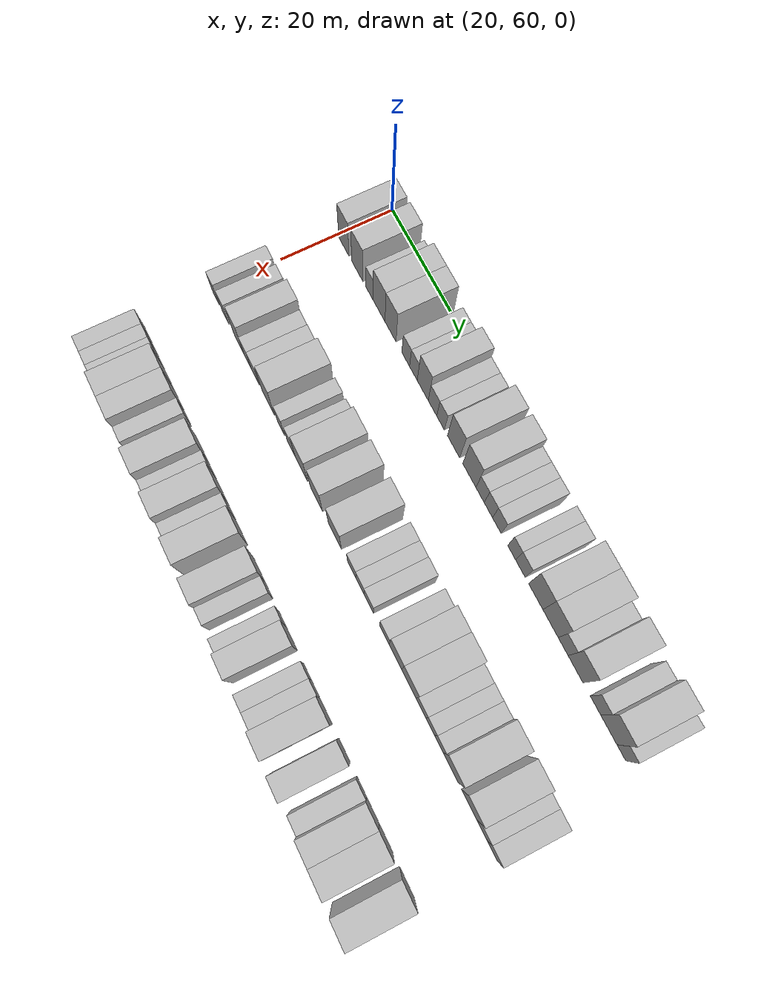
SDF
<sdf version="1.6">
 <world name="default">
  <model name="building_72">
   <static>1</static>
   <pose>25.0000 62.3919 0 0.000000 0.000000 0.000000</pose>
   <link name="link">
    <pose>0 0 4.50 0 0 0</pose>
    <collision name="collision"><geometry><box><size>10.0000 3.7185 9.0000</size></box></geometry></collision>
    <visual name="visual">
     <cast_shadows>0</cast_shadows>
     <geometry><box><size>10.0000 3.7185 9.0000</size></box></geometry>
     <material>
      <script>
       <uri>model://HANNAS_wall/materials/scripts</uri>
       <uri>model://HANNAS_wall/materials/textures</uri>
       <name>vrc/HANNAS_wall</name>
      </script>
     </material>
    </visual>
   </link>
  </model>
  <model name="building_73">
   <static>1</static>
   <pose>25.0000 67.2592 0 0.000000 0.000000 0.000000</pose>
   <link name="link">
    <pose>0 0 4.50 0 0 0</pose>
    <collision name="collision"><geometry><box><size>10.0000 4.0162 9.0000</size></box></geometry></collision>
    <visual name="visual">
     <cast_shadows>0</cast_shadows>
     <geometry><box><size>10.0000 4.0162 9.0000</size></box></geometry>
     <material>
      <script>
       <uri>model://HANNAS_wall/materials/scripts</uri>
       <uri>model://HANNAS_wall/materials/textures</uri>
       <name>vrc/HANNAS_wall</name>
      </script>
     </material>
    </visual>
   </link>
  </model>
  <model name="building_74">
   <static>1</static>
   <pose>25.0000 71.5774 0 0.000000 0.000000 0.000000</pose>
   <link name="link">
    <pose>0 0 3.00 0 0 0</pose>
    <collision name="collision"><geometry><box><size>10.0000 2.6202 6.0000</size></box></geometry></collision>
    <visual name="visual">
     <cast_shadows>0</cast_shadows>
     <geometry><box><size>10.0000 2.6202 6.0000</size></box></geometry>
     <material>
      <script>
       <uri>model://HANNAS_wall/materials/scripts</uri>
       <uri>model://HANNAS_wall/materials/textures</uri>
       <name>vrc/HANNAS_wall</name>
      </script>
     </material>
    </visual>
   </link>
  </model>
  <model name="building_75">
   <static>1</static>
   <pose>25.0000 74.9380 0 0.000000 0.000000 0.000000</pose>
   <link name="link">
    <pose>0 0 4.50 0 0 0</pose>
    <collision name="collision"><geometry><box><size>10.0000 4.1010 9.0000</size></box></geometry></collision>
    <visual name="visual">
     <cast_shadows>0</cast_shadows>
     <geometry><box><size>10.0000 4.1010 9.0000</size></box></geometry>
     <material>
      <script>
       <uri>model://HANNAS_wall/materials/scripts</uri>
       <uri>model://HANNAS_wall/materials/textures</uri>
       <name>vrc/HANNAS_wall</name>
      </script>
     </material>
    </visual>
   </link>
  </model>
  <model name="building_76">
   <static>1</static>
   <pose>25.0000 78.8971 0 0.000000 0.000000 0.000000</pose>
   <link name="link">
    <pose>0 0 4.50 0 0 0</pose>
    <collision name="collision"><geometry><box><size>10.0000 3.8172 9.0000</size></box></geometry></collision>
    <visual name="visual">
     <cast_shadows>0</cast_shadows>
     <geometry><box><size>10.0000 3.8172 9.0000</size></box></geometry>
     <material>
      <script>
       <uri>model://HANNAS_wall/materials/scripts</uri>
       <uri>model://HANNAS_wall/materials/textures</uri>
       <name>vrc/HANNAS_wall</name>
      </script>
     </material>
    </visual>
   </link>
  </model>
  <model name="building_77">
   <static>1</static>
   <pose>25.0000 84.1204 0 0.000000 0.000000 0.000000</pose>
   <link name="link">
    <pose>0 0 3.00 0 0 0</pose>
    <collision name="collision"><geometry><box><size>10.0000 2.6295 6.0000</size></box></geometry></collision>
    <visual name="visual">
     <cast_shadows>0</cast_shadows>
     <geometry><box><size>10.0000 2.6295 6.0000</size></box></geometry>
     <material>
      <script>
       <uri>model://HANNAS_wall/materials/scripts</uri>
       <uri>model://HANNAS_wall/materials/textures</uri>
       <name>vrc/HANNAS_wall</name>
      </script>
     </material>
    </visual>
   </link>
  </model>
  <model name="building_78">
   <static>1</static>
   <pose>25.0000 86.7137 0 0.000000 0.000000 0.000000</pose>
   <link name="link">
    <pose>0 0 3.00 0 0 0</pose>
    <collision name="collision"><geometry><box><size>10.0000 2.5571 6.0000</size></box></geometry></collision>
    <visual name="visual">
     <cast_shadows>0</cast_shadows>
     <geometry><box><size>10.0000 2.5571 6.0000</size></box></geometry>
     <material>
      <script>
       <uri>model://HANNAS_wall/materials/scripts</uri>
       <uri>model://HANNAS_wall/materials/textures</uri>
       <name>vrc/HANNAS_wall</name>
      </script>
     </material>
    </visual>
   </link>
  </model>
  <model name="building_79">
   <static>1</static>
   <pose>25.0000 89.8421 0 0.000000 0.000000 0.000000</pose>
   <link name="link">
    <pose>0 0 4.50 0 0 0</pose>
    <collision name="collision"><geometry><box><size>10.0000 3.6998 9.0000</size></box></geometry></collision>
    <visual name="visual">
     <cast_shadows>0</cast_shadows>
     <geometry><box><size>10.0000 3.6998 9.0000</size></box></geometry>
     <material>
      <script>
       <uri>model://HANNAS_wall/materials/scripts</uri>
       <uri>model://HANNAS_wall/materials/textures</uri>
       <name>vrc/HANNAS_wall</name>
      </script>
     </material>
    </visual>
   </link>
  </model>
  <model name="building_80">
   <static>1</static>
   <pose>25.0000 93.0913 0 0.000000 0.000000 0.000000</pose>
   <link name="link">
    <pose>0 0 3.00 0 0 0</pose>
    <collision name="collision"><geometry><box><size>10.0000 2.7985 6.0000</size></box></geometry></collision>
    <visual name="visual">
     <cast_shadows>0</cast_shadows>
     <geometry><box><size>10.0000 2.7985 6.0000</size></box></geometry>
     <material>
      <script>
       <uri>model://HANNAS_wall/materials/scripts</uri>
       <uri>model://HANNAS_wall/materials/textures</uri>
       <name>vrc/HANNAS_wall</name>
      </script>
     </material>
    </visual>
   </link>
  </model>
  <model name="building_81">
   <static>1</static>
   <pose>25.0000 95.7357 0 0.000000 0.000000 0.000000</pose>
   <link name="link">
    <pose>0 0 3.00 0 0 0</pose>
    <collision name="collision"><geometry><box><size>10.0000 2.4904 6.0000</size></box></geometry></collision>
    <visual name="visual">
     <cast_shadows>0</cast_shadows>
     <geometry><box><size>10.0000 2.4904 6.0000</size></box></geometry>
     <material>
      <script>
       <uri>model://HANNAS_wall/materials/scripts</uri>
       <uri>model://HANNAS_wall/materials/textures</uri>
       <name>vrc/HANNAS_wall</name>
      </script>
     </material>
    </visual>
   </link>
  </model>
  <model name="building_82">
   <static>1</static>
   <pose>25.0000 99.9466 0 0.000000 0.000000 0.000000</pose>
   <link name="link">
    <pose>0 0 4.50 0 0 0</pose>
    <collision name="collision"><geometry><box><size>10.0000 3.9313 9.0000</size></box></geometry></collision>
    <visual name="visual">
     <cast_shadows>0</cast_shadows>
     <geometry><box><size>10.0000 3.9313 9.0000</size></box></geometry>
     <material>
      <script>
       <uri>model://HANNAS_wall/materials/scripts</uri>
       <uri>model://HANNAS_wall/materials/textures</uri>
       <name>vrc/HANNAS_wall</name>
      </script>
     </material>
    </visual>
   </link>
  </model>
  <model name="building_83">
   <static>1</static>
   <pose>25.0000 104.9887 0 0.000000 0.000000 0.000000</pose>
   <link name="link">
    <pose>0 0 4.50 0 0 0</pose>
    <collision name="collision"><geometry><box><size>10.0000 4.1530 9.0000</size></box></geometry></collision>
    <visual name="visual">
     <cast_shadows>0</cast_shadows>
     <geometry><box><size>10.0000 4.1530 9.0000</size></box></geometry>
     <material>
      <script>
       <uri>model://HANNAS_wall/materials/scripts</uri>
       <uri>model://HANNAS_wall/materials/textures</uri>
       <name>vrc/HANNAS_wall</name>
      </script>
     </material>
    </visual>
   </link>
  </model>
  <model name="building_84">
   <static>1</static>
   <pose>25.0000 108.3641 0 0.000000 0.000000 0.000000</pose>
   <link name="link">
    <pose>0 0 3.00 0 0 0</pose>
    <collision name="collision"><geometry><box><size>10.0000 2.5978 6.0000</size></box></geometry></collision>
    <visual name="visual">
     <cast_shadows>0</cast_shadows>
     <geometry><box><size>10.0000 2.5978 6.0000</size></box></geometry>
     <material>
      <script>
       <uri>model://HANNAS_wall/materials/scripts</uri>
       <uri>model://HANNAS_wall/materials/textures</uri>
       <name>vrc/HANNAS_wall</name>
      </script>
     </material>
    </visual>
   </link>
  </model>
  <model name="building_85">
   <static>1</static>
   <pose>25.0000 110.9537 0 0.000000 0.000000 0.000000</pose>
   <link name="link">
    <pose>0 0 3.00 0 0 0</pose>
    <collision name="collision"><geometry><box><size>10.0000 2.5814 6.0000</size></box></geometry></collision>
    <visual name="visual">
     <cast_shadows>0</cast_shadows>
     <geometry><box><size>10.0000 2.5814 6.0000</size></box></geometry>
     <material>
      <script>
       <uri>model://HANNAS_wall/materials/scripts</uri>
       <uri>model://HANNAS_wall/materials/textures</uri>
       <name>vrc/HANNAS_wall</name>
      </script>
     </material>
    </visual>
   </link>
  </model>
  <model name="building_86">
   <static>1</static>
   <pose>25.0000 113.5695 0 0.000000 0.000000 0.000000</pose>
   <link name="link">
    <pose>0 0 3.00 0 0 0</pose>
    <collision name="collision"><geometry><box><size>10.0000 2.6502 6.0000</size></box></geometry></collision>
    <visual name="visual">
     <cast_shadows>0</cast_shadows>
     <geometry><box><size>10.0000 2.6502 6.0000</size></box></geometry>
     <material>
      <script>
       <uri>model://HANNAS_wall/materials/scripts</uri>
       <uri>model://HANNAS_wall/materials/textures</uri>
       <name>vrc/HANNAS_wall</name>
      </script>
     </material>
    </visual>
   </link>
  </model>
  <model name="building_87">
   <static>1</static>
   <pose>25.0000 118.1043 0 0.000000 0.000000 0.000000</pose>
   <link name="link">
    <pose>0 0 3.00 0 0 0</pose>
    <collision name="collision"><geometry><box><size>10.0000 2.4193 6.0000</size></box></geometry></collision>
    <visual name="visual">
     <cast_shadows>0</cast_shadows>
     <geometry><box><size>10.0000 2.4193 6.0000</size></box></geometry>
     <material>
      <script>
       <uri>model://HANNAS_wall/materials/scripts</uri>
       <uri>model://HANNAS_wall/materials/textures</uri>
       <name>vrc/HANNAS_wall</name>
      </script>
     </material>
    </visual>
   </link>
  </model>
  <model name="building_88">
   <static>1</static>
   <pose>25.0000 120.7373 0 0.000000 0.000000 0.000000</pose>
   <link name="link">
    <pose>0 0 3.00 0 0 0</pose>
    <collision name="collision"><geometry><box><size>10.0000 2.8467 6.0000</size></box></geometry></collision>
    <visual name="visual">
     <cast_shadows>0</cast_shadows>
     <geometry><box><size>10.0000 2.8467 6.0000</size></box></geometry>
     <material>
      <script>
       <uri>model://HANNAS_wall/materials/scripts</uri>
       <uri>model://HANNAS_wall/materials/textures</uri>
       <name>vrc/HANNAS_wall</name>
      </script>
     </material>
    </visual>
   </link>
  </model>
  <model name="building_89">
   <static>1</static>
   <pose>25.0000 125.2650 0 0.000000 0.000000 0.000000</pose>
   <link name="link">
    <pose>0 0 4.50 0 0 0</pose>
    <collision name="collision"><geometry><box><size>10.0000 4.2087 9.0000</size></box></geometry></collision>
    <visual name="visual">
     <cast_shadows>0</cast_shadows>
     <geometry><box><size>10.0000 4.2087 9.0000</size></box></geometry>
     <material>
      <script>
       <uri>model://HANNAS_wall/materials/scripts</uri>
       <uri>model://HANNAS_wall/materials/textures</uri>
       <name>vrc/HANNAS_wall</name>
      </script>
     </material>
    </visual>
   </link>
  </model>
  <model name="building_90">
   <static>1</static>
   <pose>25.0000 129.5925 0 0.000000 0.000000 0.000000</pose>
   <link name="link">
    <pose>0 0 4.50 0 0 0</pose>
    <collision name="collision"><geometry><box><size>10.0000 4.4463 9.0000</size></box></geometry></collision>
    <visual name="visual">
     <cast_shadows>0</cast_shadows>
     <geometry><box><size>10.0000 4.4463 9.0000</size></box></geometry>
     <material>
      <script>
       <uri>model://HANNAS_wall/materials/scripts</uri>
       <uri>model://HANNAS_wall/materials/textures</uri>
       <name>vrc/HANNAS_wall</name>
      </script>
     </material>
    </visual>
   </link>
  </model>
  <model name="building_91">
   <static>1</static>
   <pose>25.0000 133.2282 0 0.000000 0.000000 0.000000</pose>
   <link name="link">
    <pose>0 0 3.00 0 0 0</pose>
    <collision name="collision"><geometry><box><size>10.0000 2.8251 6.0000</size></box></geometry></collision>
    <visual name="visual">
     <cast_shadows>0</cast_shadows>
     <geometry><box><size>10.0000 2.8251 6.0000</size></box></geometry>
     <material>
      <script>
       <uri>model://HANNAS_wall/materials/scripts</uri>
       <uri>model://HANNAS_wall/materials/textures</uri>
       <name>vrc/HANNAS_wall</name>
      </script>
     </material>
    </visual>
   </link>
  </model>
  <model name="building_92">
   <static>1</static>
   <pose>25.0000 136.7591 0 0.000000 0.000000 0.000000</pose>
   <link name="link">
    <pose>0 0 4.50 0 0 0</pose>
    <collision name="collision"><geometry><box><size>10.0000 4.2366 9.0000</size></box></geometry></collision>
    <visual name="visual">
     <cast_shadows>0</cast_shadows>
     <geometry><box><size>10.0000 4.2366 9.0000</size></box></geometry>
     <material>
      <script>
       <uri>model://HANNAS_wall/materials/scripts</uri>
       <uri>model://HANNAS_wall/materials/textures</uri>
       <name>vrc/HANNAS_wall</name>
      </script>
     </material>
    </visual>
   </link>
  </model>
  <model name="building_93">
   <static>1</static>
   <pose>25.0000 142.3125 0 0.000000 0.000000 0.000000</pose>
   <link name="link">
    <pose>0 0 3.00 0 0 0</pose>
    <collision name="collision"><geometry><box><size>10.0000 2.8704 6.0000</size></box></geometry></collision>
    <visual name="visual">
     <cast_shadows>0</cast_shadows>
     <geometry><box><size>10.0000 2.8704 6.0000</size></box></geometry>
     <material>
      <script>
       <uri>model://HANNAS_wall/materials/scripts</uri>
       <uri>model://HANNAS_wall/materials/textures</uri>
       <name>vrc/HANNAS_wall</name>
      </script>
     </material>
    </visual>
   </link>
  </model>
  <model name="building_94">
   <static>1</static>
   <pose>25.0000 145.9906 0 0.000000 0.000000 0.000000</pose>
   <link name="link">
    <pose>0 0 4.50 0 0 0</pose>
    <collision name="collision"><geometry><box><size>10.0000 4.4858 9.0000</size></box></geometry></collision>
    <visual name="visual">
     <cast_shadows>0</cast_shadows>
     <geometry><box><size>10.0000 4.4858 9.0000</size></box></geometry>
     <material>
      <script>
       <uri>model://HANNAS_wall/materials/scripts</uri>
       <uri>model://HANNAS_wall/materials/textures</uri>
       <name>vrc/HANNAS_wall</name>
      </script>
     </material>
    </visual>
   </link>
  </model>
  <model name="building_95">
   <static>1</static>
   <pose>25.0000 149.4372 0 0.000000 0.000000 0.000000</pose>
   <link name="link">
    <pose>0 0 3.00 0 0 0</pose>
    <collision name="collision"><geometry><box><size>10.0000 2.4074 6.0000</size></box></geometry></collision>
    <visual name="visual">
     <cast_shadows>0</cast_shadows>
     <geometry><box><size>10.0000 2.4074 6.0000</size></box></geometry>
     <material>
      <script>
       <uri>model://HANNAS_wall/materials/scripts</uri>
       <uri>model://HANNAS_wall/materials/textures</uri>
       <name>vrc/HANNAS_wall</name>
      </script>
     </material>
    </visual>
   </link>
  </model>
  <model name="building_187">
   <static>1</static>
   <pose>47.0000 61.5272 0 0.000000 0.000000 0.000000</pose>
   <link name="link">
    <pose>0 0 3.00 0 0 0</pose>
    <collision name="collision"><geometry><box><size>10.0000 2.5414 6.0000</size></box></geometry></collision>
    <visual name="visual">
     <cast_shadows>0</cast_shadows>
     <geometry><box><size>10.0000 2.5414 6.0000</size></box></geometry>
     <material>
      <script>
       <uri>model://HANNAS_wall/materials/scripts</uri>
       <uri>model://HANNAS_wall/materials/textures</uri>
       <name>vrc/HANNAS_wall</name>
      </script>
     </material>
    </visual>
   </link>
  </model>
  <model name="building_188">
   <static>1</static>
   <pose>47.0000 65.1511 0 0.000000 0.000000 0.000000</pose>
   <link name="link">
    <pose>0 0 3.00 0 0 0</pose>
    <collision name="collision"><geometry><box><size>10.0000 2.7064 6.0000</size></box></geometry></collision>
    <visual name="visual">
     <cast_shadows>0</cast_shadows>
     <geometry><box><size>10.0000 2.7064 6.0000</size></box></geometry>
     <material>
      <script>
       <uri>model://HANNAS_wall/materials/scripts</uri>
       <uri>model://HANNAS_wall/materials/textures</uri>
       <name>vrc/HANNAS_wall</name>
      </script>
     </material>
    </visual>
   </link>
  </model>
  <model name="building_189">
   <static>1</static>
   <pose>47.0000 70.3669 0 0.000000 0.000000 0.000000</pose>
   <link name="link">
    <pose>0 0 4.50 0 0 0</pose>
    <collision name="collision"><geometry><box><size>10.0000 3.7252 9.0000</size></box></geometry></collision>
    <visual name="visual">
     <cast_shadows>0</cast_shadows>
     <geometry><box><size>10.0000 3.7252 9.0000</size></box></geometry>
     <material>
      <script>
       <uri>model://HANNAS_wall/materials/scripts</uri>
       <uri>model://HANNAS_wall/materials/textures</uri>
       <name>vrc/HANNAS_wall</name>
      </script>
     </material>
    </visual>
   </link>
  </model>
  <model name="building_190">
   <static>1</static>
   <pose>47.0000 73.5752 0 0.000000 0.000000 0.000000</pose>
   <link name="link">
    <pose>0 0 3.00 0 0 0</pose>
    <collision name="collision"><geometry><box><size>10.0000 2.6914 6.0000</size></box></geometry></collision>
    <visual name="visual">
     <cast_shadows>0</cast_shadows>
     <geometry><box><size>10.0000 2.6914 6.0000</size></box></geometry>
     <material>
      <script>
       <uri>model://HANNAS_wall/materials/scripts</uri>
       <uri>model://HANNAS_wall/materials/textures</uri>
       <name>vrc/HANNAS_wall</name>
      </script>
     </material>
    </visual>
   </link>
  </model>
  <model name="building_191">
   <static>1</static>
   <pose>47.0000 76.4164 0 0.000000 0.000000 0.000000</pose>
   <link name="link">
    <pose>0 0 3.00 0 0 0</pose>
    <collision name="collision"><geometry><box><size>10.0000 2.9910 6.0000</size></box></geometry></collision>
    <visual name="visual">
     <cast_shadows>0</cast_shadows>
     <geometry><box><size>10.0000 2.9910 6.0000</size></box></geometry>
     <material>
      <script>
       <uri>model://HANNAS_wall/materials/scripts</uri>
       <uri>model://HANNAS_wall/materials/textures</uri>
       <name>vrc/HANNAS_wall</name>
      </script>
     </material>
    </visual>
   </link>
  </model>
  <model name="building_192">
   <static>1</static>
   <pose>47.0000 81.1335 0 0.000000 0.000000 0.000000</pose>
   <link name="link">
    <pose>0 0 4.50 0 0 0</pose>
    <collision name="collision"><geometry><box><size>10.0000 4.4432 9.0000</size></box></geometry></collision>
    <visual name="visual">
     <cast_shadows>0</cast_shadows>
     <geometry><box><size>10.0000 4.4432 9.0000</size></box></geometry>
     <material>
      <script>
       <uri>model://HANNAS_wall/materials/scripts</uri>
       <uri>model://HANNAS_wall/materials/textures</uri>
       <name>vrc/HANNAS_wall</name>
      </script>
     </material>
    </visual>
   </link>
  </model>
  <model name="building_193">
   <static>1</static>
   <pose>47.0000 85.6548 0 0.000000 0.000000 0.000000</pose>
   <link name="link">
    <pose>0 0 3.00 0 0 0</pose>
    <collision name="collision"><geometry><box><size>10.0000 2.5993 6.0000</size></box></geometry></collision>
    <visual name="visual">
     <cast_shadows>0</cast_shadows>
     <geometry><box><size>10.0000 2.5993 6.0000</size></box></geometry>
     <material>
      <script>
       <uri>model://HANNAS_wall/materials/scripts</uri>
       <uri>model://HANNAS_wall/materials/textures</uri>
       <name>vrc/HANNAS_wall</name>
      </script>
     </material>
    </visual>
   </link>
  </model>
  <model name="building_194">
   <static>1</static>
   <pose>47.0000 89.3128 0 0.000000 0.000000 0.000000</pose>
   <link name="link">
    <pose>0 0 3.00 0 0 0</pose>
    <collision name="collision"><geometry><box><size>10.0000 2.7167 6.0000</size></box></geometry></collision>
    <visual name="visual">
     <cast_shadows>0</cast_shadows>
     <geometry><box><size>10.0000 2.7167 6.0000</size></box></geometry>
     <material>
      <script>
       <uri>model://HANNAS_wall/materials/scripts</uri>
       <uri>model://HANNAS_wall/materials/textures</uri>
       <name>vrc/HANNAS_wall</name>
      </script>
     </material>
    </visual>
   </link>
  </model>
  <model name="building_195">
   <static>1</static>
   <pose>47.0000 92.8818 0 0.000000 0.000000 0.000000</pose>
   <link name="link">
    <pose>0 0 4.50 0 0 0</pose>
    <collision name="collision"><geometry><box><size>10.0000 4.4213 9.0000</size></box></geometry></collision>
    <visual name="visual">
     <cast_shadows>0</cast_shadows>
     <geometry><box><size>10.0000 4.4213 9.0000</size></box></geometry>
     <material>
      <script>
       <uri>model://HANNAS_wall/materials/scripts</uri>
       <uri>model://HANNAS_wall/materials/textures</uri>
       <name>vrc/HANNAS_wall</name>
      </script>
     </material>
    </visual>
   </link>
  </model>
  <model name="building_196">
   <static>1</static>
   <pose>47.0000 98.1426 0 0.000000 0.000000 0.000000</pose>
   <link name="link">
    <pose>0 0 4.50 0 0 0</pose>
    <collision name="collision"><geometry><box><size>10.0000 4.1005 9.0000</size></box></geometry></collision>
    <visual name="visual">
     <cast_shadows>0</cast_shadows>
     <geometry><box><size>10.0000 4.1005 9.0000</size></box></geometry>
     <material>
      <script>
       <uri>model://HANNAS_wall/materials/scripts</uri>
       <uri>model://HANNAS_wall/materials/textures</uri>
       <name>vrc/HANNAS_wall</name>
      </script>
     </material>
    </visual>
   </link>
  </model>
  <model name="building_197">
   <static>1</static>
   <pose>47.0000 104.3759 0 0.000000 0.000000 0.000000</pose>
   <link name="link">
    <pose>0 0 4.50 0 0 0</pose>
    <collision name="collision"><geometry><box><size>10.0000 4.3660 9.0000</size></box></geometry></collision>
    <visual name="visual">
     <cast_shadows>0</cast_shadows>
     <geometry><box><size>10.0000 4.3660 9.0000</size></box></geometry>
     <material>
      <script>
       <uri>model://HANNAS_wall/materials/scripts</uri>
       <uri>model://HANNAS_wall/materials/textures</uri>
       <name>vrc/HANNAS_wall</name>
      </script>
     </material>
    </visual>
   </link>
  </model>
  <model name="building_198">
   <static>1</static>
   <pose>47.0000 109.9896 0 0.000000 0.000000 0.000000</pose>
   <link name="link">
    <pose>0 0 3.00 0 0 0</pose>
    <collision name="collision"><geometry><box><size>10.0000 2.8613 6.0000</size></box></geometry></collision>
    <visual name="visual">
     <cast_shadows>0</cast_shadows>
     <geometry><box><size>10.0000 2.8613 6.0000</size></box></geometry>
     <material>
      <script>
       <uri>model://HANNAS_wall/materials/scripts</uri>
       <uri>model://HANNAS_wall/materials/textures</uri>
       <name>vrc/HANNAS_wall</name>
      </script>
     </material>
    </visual>
   </link>
  </model>
  <model name="building_199">
   <static>1</static>
   <pose>47.0000 112.7294 0 0.000000 0.000000 0.000000</pose>
   <link name="link">
    <pose>0 0 3.00 0 0 0</pose>
    <collision name="collision"><geometry><box><size>10.0000 2.6182 6.0000</size></box></geometry></collision>
    <visual name="visual">
     <cast_shadows>0</cast_shadows>
     <geometry><box><size>10.0000 2.6182 6.0000</size></box></geometry>
     <material>
      <script>
       <uri>model://HANNAS_wall/materials/scripts</uri>
       <uri>model://HANNAS_wall/materials/textures</uri>
       <name>vrc/HANNAS_wall</name>
      </script>
     </material>
    </visual>
   </link>
  </model>
  <model name="building_200">
   <static>1</static>
   <pose>47.0000 115.5071 0 0.000000 0.000000 0.000000</pose>
   <link name="link">
    <pose>0 0 3.00 0 0 0</pose>
    <collision name="collision"><geometry><box><size>10.0000 2.9371 6.0000</size></box></geometry></collision>
    <visual name="visual">
     <cast_shadows>0</cast_shadows>
     <geometry><box><size>10.0000 2.9371 6.0000</size></box></geometry>
     <material>
      <script>
       <uri>model://HANNAS_wall/materials/scripts</uri>
       <uri>model://HANNAS_wall/materials/textures</uri>
       <name>vrc/HANNAS_wall</name>
      </script>
     </material>
    </visual>
   </link>
  </model>
  <model name="building_201">
   <static>1</static>
   <pose>47.0000 120.4746 0 0.000000 0.000000 0.000000</pose>
   <link name="link">
    <pose>0 0 3.00 0 0 0</pose>
    <collision name="collision"><geometry><box><size>10.0000 2.9980 6.0000</size></box></geometry></collision>
    <visual name="visual">
     <cast_shadows>0</cast_shadows>
     <geometry><box><size>10.0000 2.9980 6.0000</size></box></geometry>
     <material>
      <script>
       <uri>model://HANNAS_wall/materials/scripts</uri>
       <uri>model://HANNAS_wall/materials/textures</uri>
       <name>vrc/HANNAS_wall</name>
      </script>
     </material>
    </visual>
   </link>
  </model>
  <model name="building_202">
   <static>1</static>
   <pose>47.0000 123.9324 0 0.000000 0.000000 0.000000</pose>
   <link name="link">
    <pose>0 0 4.50 0 0 0</pose>
    <collision name="collision"><geometry><box><size>10.0000 3.9175 9.0000</size></box></geometry></collision>
    <visual name="visual">
     <cast_shadows>0</cast_shadows>
     <geometry><box><size>10.0000 3.9175 9.0000</size></box></geometry>
     <material>
      <script>
       <uri>model://HANNAS_wall/materials/scripts</uri>
       <uri>model://HANNAS_wall/materials/textures</uri>
       <name>vrc/HANNAS_wall</name>
      </script>
     </material>
    </visual>
   </link>
  </model>
  <model name="building_203">
   <static>1</static>
   <pose>47.0000 128.0761 0 0.000000 0.000000 0.000000</pose>
   <link name="link">
    <pose>0 0 4.50 0 0 0</pose>
    <collision name="collision"><geometry><box><size>10.0000 4.3701 9.0000</size></box></geometry></collision>
    <visual name="visual">
     <cast_shadows>0</cast_shadows>
     <geometry><box><size>10.0000 4.3701 9.0000</size></box></geometry>
     <material>
      <script>
       <uri>model://HANNAS_wall/materials/scripts</uri>
       <uri>model://HANNAS_wall/materials/textures</uri>
       <name>vrc/HANNAS_wall</name>
      </script>
     </material>
    </visual>
   </link>
  </model>
  <model name="building_204">
   <static>1</static>
   <pose>47.0000 131.7200 0 0.000000 0.000000 0.000000</pose>
   <link name="link">
    <pose>0 0 3.00 0 0 0</pose>
    <collision name="collision"><geometry><box><size>10.0000 2.9175 6.0000</size></box></geometry></collision>
    <visual name="visual">
     <cast_shadows>0</cast_shadows>
     <geometry><box><size>10.0000 2.9175 6.0000</size></box></geometry>
     <material>
      <script>
       <uri>model://HANNAS_wall/materials/scripts</uri>
       <uri>model://HANNAS_wall/materials/textures</uri>
       <name>vrc/HANNAS_wall</name>
      </script>
     </material>
    </visual>
   </link>
  </model>
  <model name="building_205">
   <static>1</static>
   <pose>47.0000 134.4806 0 0.000000 0.000000 0.000000</pose>
   <link name="link">
    <pose>0 0 3.00 0 0 0</pose>
    <collision name="collision"><geometry><box><size>10.0000 2.6038 6.0000</size></box></geometry></collision>
    <visual name="visual">
     <cast_shadows>0</cast_shadows>
     <geometry><box><size>10.0000 2.6038 6.0000</size></box></geometry>
     <material>
      <script>
       <uri>model://HANNAS_wall/materials/scripts</uri>
       <uri>model://HANNAS_wall/materials/textures</uri>
       <name>vrc/HANNAS_wall</name>
      </script>
     </material>
    </visual>
   </link>
  </model>
  <model name="building_206">
   <static>1</static>
   <pose>47.0000 137.0818 0 0.000000 0.000000 0.000000</pose>
   <link name="link">
    <pose>0 0 3.00 0 0 0</pose>
    <collision name="collision"><geometry><box><size>10.0000 2.5986 6.0000</size></box></geometry></collision>
    <visual name="visual">
     <cast_shadows>0</cast_shadows>
     <geometry><box><size>10.0000 2.5986 6.0000</size></box></geometry>
     <material>
      <script>
       <uri>model://HANNAS_wall/materials/scripts</uri>
       <uri>model://HANNAS_wall/materials/textures</uri>
       <name>vrc/HANNAS_wall</name>
      </script>
     </material>
    </visual>
   </link>
  </model>
  <model name="building_207">
   <static>1</static>
   <pose>47.0000 140.6048 0 0.000000 0.000000 0.000000</pose>
   <link name="link">
    <pose>0 0 4.50 0 0 0</pose>
    <collision name="collision"><geometry><box><size>10.0000 4.4475 9.0000</size></box></geometry></collision>
    <visual name="visual">
     <cast_shadows>0</cast_shadows>
     <geometry><box><size>10.0000 4.4475 9.0000</size></box></geometry>
     <material>
      <script>
       <uri>model://HANNAS_wall/materials/scripts</uri>
       <uri>model://HANNAS_wall/materials/textures</uri>
       <name>vrc/HANNAS_wall</name>
      </script>
     </material>
    </visual>
   </link>
  </model>
  <model name="building_208">
   <static>1</static>
   <pose>47.0000 146.0145 0 0.000000 0.000000 0.000000</pose>
   <link name="link">
    <pose>0 0 4.50 0 0 0</pose>
    <collision name="collision"><geometry><box><size>10.0000 4.3718 9.0000</size></box></geometry></collision>
    <visual name="visual">
     <cast_shadows>0</cast_shadows>
     <geometry><box><size>10.0000 4.3718 9.0000</size></box></geometry>
     <material>
      <script>
       <uri>model://HANNAS_wall/materials/scripts</uri>
       <uri>model://HANNAS_wall/materials/textures</uri>
       <name>vrc/HANNAS_wall</name>
      </script>
     </material>
    </visual>
   </link>
  </model>
  <model name="building_209">
   <static>1</static>
   <pose>47.0000 149.5693 0 0.000000 0.000000 0.000000</pose>
   <link name="link">
    <pose>0 0 3.00 0 0 0</pose>
    <collision name="collision"><geometry><box><size>10.0000 2.7379 6.0000</size></box></geometry></collision>
    <visual name="visual">
     <cast_shadows>0</cast_shadows>
     <geometry><box><size>10.0000 2.7379 6.0000</size></box></geometry>
     <material>
      <script>
       <uri>model://HANNAS_wall/materials/scripts</uri>
       <uri>model://HANNAS_wall/materials/textures</uri>
       <name>vrc/HANNAS_wall</name>
      </script>
     </material>
    </visual>
   </link>
  </model>
  <model name="building_210">
   <static>1</static>
   <pose>47.0000 152.4342 0 0.000000 0.000000 0.000000</pose>
   <link name="link">
    <pose>0 0 3.00 0 0 0</pose>
    <collision name="collision"><geometry><box><size>10.0000 2.9918 6.0000</size></box></geometry></collision>
    <visual name="visual">
     <cast_shadows>0</cast_shadows>
     <geometry><box><size>10.0000 2.9918 6.0000</size></box></geometry>
     <material>
      <script>
       <uri>model://HANNAS_wall/materials/scripts</uri>
       <uri>model://HANNAS_wall/materials/textures</uri>
       <name>vrc/HANNAS_wall</name>
      </script>
     </material>
    </visual>
   </link>
  </model>
  <model name="building_307">
   <static>1</static>
   <pose>69.0000 62.4204 0 0.000000 0.000000 0.000000</pose>
   <link name="link">
    <pose>0 0 3.00 0 0 0</pose>
    <collision name="collision"><geometry><box><size>10.0000 2.6665 6.0000</size></box></geometry></collision>
    <visual name="visual">
     <cast_shadows>0</cast_shadows>
     <geometry><box><size>10.0000 2.6665 6.0000</size></box></geometry>
     <material>
      <script>
       <uri>model://HANNAS_wall/materials/scripts</uri>
       <uri>model://HANNAS_wall/materials/textures</uri>
       <name>vrc/HANNAS_wall</name>
      </script>
     </material>
    </visual>
   </link>
  </model>
  <model name="building_308">
   <static>1</static>
   <pose>69.0000 64.9587 0 0.000000 0.000000 0.000000</pose>
   <link name="link">
    <pose>0 0 3.00 0 0 0</pose>
    <collision name="collision"><geometry><box><size>10.0000 2.4100 6.0000</size></box></geometry></collision>
    <visual name="visual">
     <cast_shadows>0</cast_shadows>
     <geometry><box><size>10.0000 2.4100 6.0000</size></box></geometry>
     <material>
      <script>
       <uri>model://HANNAS_wall/materials/scripts</uri>
       <uri>model://HANNAS_wall/materials/textures</uri>
       <name>vrc/HANNAS_wall</name>
      </script>
     </material>
    </visual>
   </link>
  </model>
  <model name="building_309">
   <static>1</static>
   <pose>69.0000 67.5104 0 0.000000 0.000000 0.000000</pose>
   <link name="link">
    <pose>0 0 3.00 0 0 0</pose>
    <collision name="collision"><geometry><box><size>10.0000 2.6935 6.0000</size></box></geometry></collision>
    <visual name="visual">
     <cast_shadows>0</cast_shadows>
     <geometry><box><size>10.0000 2.6935 6.0000</size></box></geometry>
     <material>
      <script>
       <uri>model://HANNAS_wall/materials/scripts</uri>
       <uri>model://HANNAS_wall/materials/textures</uri>
       <name>vrc/HANNAS_wall</name>
      </script>
     </material>
    </visual>
   </link>
  </model>
  <model name="building_310">
   <static>1</static>
   <pose>69.0000 70.9173 0 0.000000 0.000000 0.000000</pose>
   <link name="link">
    <pose>0 0 4.50 0 0 0</pose>
    <collision name="collision"><geometry><box><size>10.0000 4.1203 9.0000</size></box></geometry></collision>
    <visual name="visual">
     <cast_shadows>0</cast_shadows>
     <geometry><box><size>10.0000 4.1203 9.0000</size></box></geometry>
     <material>
      <script>
       <uri>model://HANNAS_wall/materials/scripts</uri>
       <uri>model://HANNAS_wall/materials/textures</uri>
       <name>vrc/HANNAS_wall</name>
      </script>
     </material>
    </visual>
   </link>
  </model>
  <model name="building_311">
   <static>1</static>
   <pose>69.0000 74.9173 0 0.000000 0.000000 0.000000</pose>
   <link name="link">
    <pose>0 0 4.50 0 0 0</pose>
    <collision name="collision"><geometry><box><size>10.0000 3.8797 9.0000</size></box></geometry></collision>
    <visual name="visual">
     <cast_shadows>0</cast_shadows>
     <geometry><box><size>10.0000 3.8797 9.0000</size></box></geometry>
     <material>
      <script>
       <uri>model://HANNAS_wall/materials/scripts</uri>
       <uri>model://HANNAS_wall/materials/textures</uri>
       <name>vrc/HANNAS_wall</name>
      </script>
     </material>
    </visual>
   </link>
  </model>
  <model name="building_312">
   <static>1</static>
   <pose>69.0000 78.1776 0 0.000000 0.000000 0.000000</pose>
   <link name="link">
    <pose>0 0 3.00 0 0 0</pose>
    <collision name="collision"><geometry><box><size>10.0000 2.6408 6.0000</size></box></geometry></collision>
    <visual name="visual">
     <cast_shadows>0</cast_shadows>
     <geometry><box><size>10.0000 2.6408 6.0000</size></box></geometry>
     <material>
      <script>
       <uri>model://HANNAS_wall/materials/scripts</uri>
       <uri>model://HANNAS_wall/materials/textures</uri>
       <name>vrc/HANNAS_wall</name>
      </script>
     </material>
    </visual>
   </link>
  </model>
  <model name="building_313">
   <static>1</static>
   <pose>69.0000 83.6355 0 0.000000 0.000000 0.000000</pose>
   <link name="link">
    <pose>0 0 4.50 0 0 0</pose>
    <collision name="collision"><geometry><box><size>10.0000 4.2750 9.0000</size></box></geometry></collision>
    <visual name="visual">
     <cast_shadows>0</cast_shadows>
     <geometry><box><size>10.0000 4.2750 9.0000</size></box></geometry>
     <material>
      <script>
       <uri>model://HANNAS_wall/materials/scripts</uri>
       <uri>model://HANNAS_wall/materials/textures</uri>
       <name>vrc/HANNAS_wall</name>
      </script>
     </material>
    </visual>
   </link>
  </model>
  <model name="building_314">
   <static>1</static>
   <pose>69.0000 87.2004 0 0.000000 0.000000 0.000000</pose>
   <link name="link">
    <pose>0 0 3.00 0 0 0</pose>
    <collision name="collision"><geometry><box><size>10.0000 2.8547 6.0000</size></box></geometry></collision>
    <visual name="visual">
     <cast_shadows>0</cast_shadows>
     <geometry><box><size>10.0000 2.8547 6.0000</size></box></geometry>
     <material>
      <script>
       <uri>model://HANNAS_wall/materials/scripts</uri>
       <uri>model://HANNAS_wall/materials/textures</uri>
       <name>vrc/HANNAS_wall</name>
      </script>
     </material>
    </visual>
   </link>
  </model>
  <model name="building_315">
   <static>1</static>
   <pose>69.0000 90.7052 0 0.000000 0.000000 0.000000</pose>
   <link name="link">
    <pose>0 0 4.50 0 0 0</pose>
    <collision name="collision"><geometry><box><size>10.0000 4.1548 9.0000</size></box></geometry></collision>
    <visual name="visual">
     <cast_shadows>0</cast_shadows>
     <geometry><box><size>10.0000 4.1548 9.0000</size></box></geometry>
     <material>
      <script>
       <uri>model://HANNAS_wall/materials/scripts</uri>
       <uri>model://HANNAS_wall/materials/textures</uri>
       <name>vrc/HANNAS_wall</name>
      </script>
     </material>
    </visual>
   </link>
  </model>
  <model name="building_316">
   <static>1</static>
   <pose>69.0000 94.2581 0 0.000000 0.000000 0.000000</pose>
   <link name="link">
    <pose>0 0 3.00 0 0 0</pose>
    <collision name="collision"><geometry><box><size>10.0000 2.9511 6.0000</size></box></geometry></collision>
    <visual name="visual">
     <cast_shadows>0</cast_shadows>
     <geometry><box><size>10.0000 2.9511 6.0000</size></box></geometry>
     <material>
      <script>
       <uri>model://HANNAS_wall/materials/scripts</uri>
       <uri>model://HANNAS_wall/materials/textures</uri>
       <name>vrc/HANNAS_wall</name>
      </script>
     </material>
    </visual>
   </link>
  </model>
  <model name="building_317">
   <static>1</static>
   <pose>69.0000 97.8479 0 0.000000 0.000000 0.000000</pose>
   <link name="link">
    <pose>0 0 4.50 0 0 0</pose>
    <collision name="collision"><geometry><box><size>10.0000 4.2286 9.0000</size></box></geometry></collision>
    <visual name="visual">
     <cast_shadows>0</cast_shadows>
     <geometry><box><size>10.0000 4.2286 9.0000</size></box></geometry>
     <material>
      <script>
       <uri>model://HANNAS_wall/materials/scripts</uri>
       <uri>model://HANNAS_wall/materials/textures</uri>
       <name>vrc/HANNAS_wall</name>
      </script>
     </material>
    </visual>
   </link>
  </model>
  <model name="building_318">
   <static>1</static>
   <pose>69.0000 103.9771 0 0.000000 0.000000 0.000000</pose>
   <link name="link">
    <pose>0 0 4.50 0 0 0</pose>
    <collision name="collision"><geometry><box><size>10.0000 4.0297 9.0000</size></box></geometry></collision>
    <visual name="visual">
     <cast_shadows>0</cast_shadows>
     <geometry><box><size>10.0000 4.0297 9.0000</size></box></geometry>
     <material>
      <script>
       <uri>model://HANNAS_wall/materials/scripts</uri>
       <uri>model://HANNAS_wall/materials/textures</uri>
       <name>vrc/HANNAS_wall</name>
      </script>
     </material>
    </visual>
   </link>
  </model>
  <model name="building_319">
   <static>1</static>
   <pose>69.0000 107.3391 0 0.000000 0.000000 0.000000</pose>
   <link name="link">
    <pose>0 0 3.00 0 0 0</pose>
    <collision name="collision"><geometry><box><size>10.0000 2.6942 6.0000</size></box></geometry></collision>
    <visual name="visual">
     <cast_shadows>0</cast_shadows>
     <geometry><box><size>10.0000 2.6942 6.0000</size></box></geometry>
     <material>
      <script>
       <uri>model://HANNAS_wall/materials/scripts</uri>
       <uri>model://HANNAS_wall/materials/textures</uri>
       <name>vrc/HANNAS_wall</name>
      </script>
     </material>
    </visual>
   </link>
  </model>
  <model name="building_320">
   <static>1</static>
   <pose>69.0000 111.9189 0 0.000000 0.000000 0.000000</pose>
   <link name="link">
    <pose>0 0 3.00 0 0 0</pose>
    <collision name="collision"><geometry><box><size>10.0000 2.4654 6.0000</size></box></geometry></collision>
    <visual name="visual">
     <cast_shadows>0</cast_shadows>
     <geometry><box><size>10.0000 2.4654 6.0000</size></box></geometry>
     <material>
      <script>
       <uri>model://HANNAS_wall/materials/scripts</uri>
       <uri>model://HANNAS_wall/materials/textures</uri>
       <name>vrc/HANNAS_wall</name>
      </script>
     </material>
    </visual>
   </link>
  </model>
  <model name="building_321">
   <static>1</static>
   <pose>69.0000 115.0576 0 0.000000 0.000000 0.000000</pose>
   <link name="link">
    <pose>0 0 4.50 0 0 0</pose>
    <collision name="collision"><geometry><box><size>10.0000 3.8120 9.0000</size></box></geometry></collision>
    <visual name="visual">
     <cast_shadows>0</cast_shadows>
     <geometry><box><size>10.0000 3.8120 9.0000</size></box></geometry>
     <material>
      <script>
       <uri>model://HANNAS_wall/materials/scripts</uri>
       <uri>model://HANNAS_wall/materials/textures</uri>
       <name>vrc/HANNAS_wall</name>
      </script>
     </material>
    </visual>
   </link>
  </model>
  <model name="building_322">
   <static>1</static>
   <pose>69.0000 120.2436 0 0.000000 0.000000 0.000000</pose>
   <link name="link">
    <pose>0 0 3.00 0 0 0</pose>
    <collision name="collision"><geometry><box><size>10.0000 2.5601 6.0000</size></box></geometry></collision>
    <visual name="visual">
     <cast_shadows>0</cast_shadows>
     <geometry><box><size>10.0000 2.5601 6.0000</size></box></geometry>
     <material>
      <script>
       <uri>model://HANNAS_wall/materials/scripts</uri>
       <uri>model://HANNAS_wall/materials/textures</uri>
       <name>vrc/HANNAS_wall</name>
      </script>
     </material>
    </visual>
   </link>
  </model>
  <model name="building_323">
   <static>1</static>
   <pose>69.0000 122.8506 0 0.000000 0.000000 0.000000</pose>
   <link name="link">
    <pose>0 0 3.00 0 0 0</pose>
    <collision name="collision"><geometry><box><size>10.0000 2.6538 6.0000</size></box></geometry></collision>
    <visual name="visual">
     <cast_shadows>0</cast_shadows>
     <geometry><box><size>10.0000 2.6538 6.0000</size></box></geometry>
     <material>
      <script>
       <uri>model://HANNAS_wall/materials/scripts</uri>
       <uri>model://HANNAS_wall/materials/textures</uri>
       <name>vrc/HANNAS_wall</name>
      </script>
     </material>
    </visual>
   </link>
  </model>
  <model name="building_324">
   <static>1</static>
   <pose>69.0000 126.2362 0 0.000000 0.000000 0.000000</pose>
   <link name="link">
    <pose>0 0 4.50 0 0 0</pose>
    <collision name="collision"><geometry><box><size>10.0000 4.1176 9.0000</size></box></geometry></collision>
    <visual name="visual">
     <cast_shadows>0</cast_shadows>
     <geometry><box><size>10.0000 4.1176 9.0000</size></box></geometry>
     <material>
      <script>
       <uri>model://HANNAS_wall/materials/scripts</uri>
       <uri>model://HANNAS_wall/materials/textures</uri>
       <name>vrc/HANNAS_wall</name>
      </script>
     </material>
    </visual>
   </link>
  </model>
  <model name="building_325">
   <static>1</static>
   <pose>69.0000 132.1056 0 0.000000 0.000000 0.000000</pose>
   <link name="link">
    <pose>0 0 4.50 0 0 0</pose>
    <collision name="collision"><geometry><box><size>10.0000 3.6211 9.0000</size></box></geometry></collision>
    <visual name="visual">
     <cast_shadows>0</cast_shadows>
     <geometry><box><size>10.0000 3.6211 9.0000</size></box></geometry>
     <material>
      <script>
       <uri>model://HANNAS_wall/materials/scripts</uri>
       <uri>model://HANNAS_wall/materials/textures</uri>
       <name>vrc/HANNAS_wall</name>
      </script>
     </material>
    </visual>
   </link>
  </model>
  <model name="building_326">
   <static>1</static>
   <pose>69.0000 137.3562 0 0.000000 0.000000 0.000000</pose>
   <link name="link">
    <pose>0 0 3.00 0 0 0</pose>
    <collision name="collision"><geometry><box><size>10.0000 2.8802 6.0000</size></box></geometry></collision>
    <visual name="visual">
     <cast_shadows>0</cast_shadows>
     <geometry><box><size>10.0000 2.8802 6.0000</size></box></geometry>
     <material>
      <script>
       <uri>model://HANNAS_wall/materials/scripts</uri>
       <uri>model://HANNAS_wall/materials/textures</uri>
       <name>vrc/HANNAS_wall</name>
      </script>
     </material>
    </visual>
   </link>
  </model>
  <model name="building_327">
   <static>1</static>
   <pose>69.0000 140.6751 0 0.000000 0.000000 0.000000</pose>
   <link name="link">
    <pose>0 0 4.50 0 0 0</pose>
    <collision name="collision"><geometry><box><size>10.0000 3.7576 9.0000</size></box></geometry></collision>
    <visual name="visual">
     <cast_shadows>0</cast_shadows>
     <geometry><box><size>10.0000 3.7576 9.0000</size></box></geometry>
     <material>
      <script>
       <uri>model://HANNAS_wall/materials/scripts</uri>
       <uri>model://HANNAS_wall/materials/textures</uri>
       <name>vrc/HANNAS_wall</name>
      </script>
     </material>
    </visual>
   </link>
  </model>
  <model name="building_328">
   <static>1</static>
   <pose>69.0000 144.6802 0 0.000000 0.000000 0.000000</pose>
   <link name="link">
    <pose>0 0 4.50 0 0 0</pose>
    <collision name="collision"><geometry><box><size>10.0000 4.2526 9.0000</size></box></geometry></collision>
    <visual name="visual">
     <cast_shadows>0</cast_shadows>
     <geometry><box><size>10.0000 4.2526 9.0000</size></box></geometry>
     <material>
      <script>
       <uri>model://HANNAS_wall/materials/scripts</uri>
       <uri>model://HANNAS_wall/materials/textures</uri>
       <name>vrc/HANNAS_wall</name>
      </script>
     </material>
    </visual>
   </link>
  </model>
  <model name="building_329">
   <static>1</static>
   <pose>69.0000 150.9747 0 0.000000 0.000000 0.000000</pose>
   <link name="link">
    <pose>0 0 4.50 0 0 0</pose>
    <collision name="collision"><geometry><box><size>10.0000 4.3364 9.0000</size></box></geometry></collision>
    <visual name="visual">
     <cast_shadows>0</cast_shadows>
     <geometry><box><size>10.0000 4.3364 9.0000</size></box></geometry>
     <material>
      <script>
       <uri>model://HANNAS_wall/materials/scripts</uri>
       <uri>model://HANNAS_wall/materials/textures</uri>
       <name>vrc/HANNAS_wall</name>
      </script>
     </material>
    </visual>
   </link>
  </model>
 </world>
</sdf>
